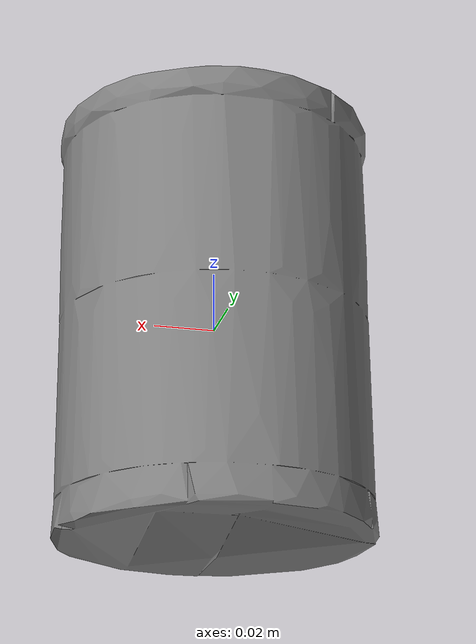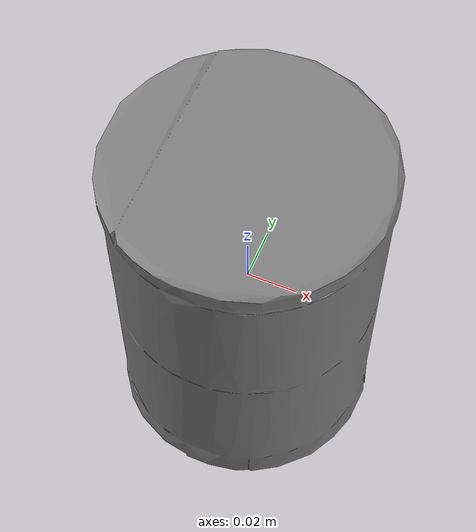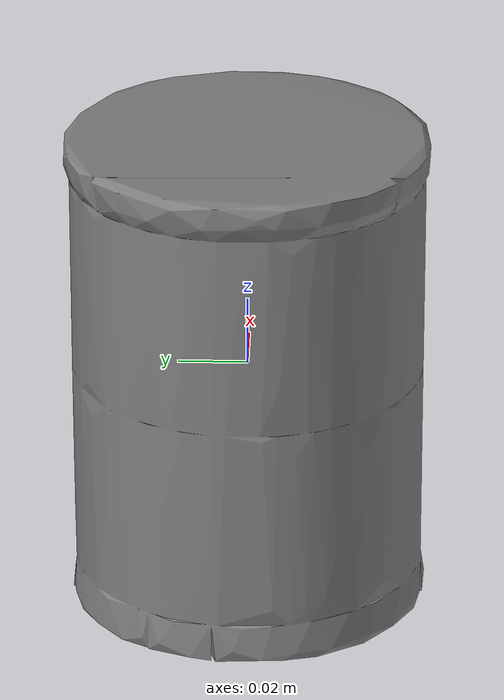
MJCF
<mujoco model="can_Don_Franciscos_Gourmet_Coffee_Medium_Decaf_100_Colombian_12_oz_340_g_M">
  <default>
    <default class="visual">
      <geom group="2" type="mesh" contype="0" conaffinity="0" />
    </default>
    <default class="collision">
      <geom group="3" type="mesh" />
    </default>
  </default>
  <asset>
    <mesh file="can_Don_Franciscos_Gourmet_Coffee_Medium_Decaf_100_Colombian_12_oz_340_g_M.stl" />
    <mesh file="can_Don_Franciscos_Gourmet_Coffee_Medium_Decaf_100_Colombian_12_oz_340_g_M_collision_0.stl" />
    <mesh file="can_Don_Franciscos_Gourmet_Coffee_Medium_Decaf_100_Colombian_12_oz_340_g_M_collision_1.stl" />
    <mesh file="can_Don_Franciscos_Gourmet_Coffee_Medium_Decaf_100_Colombian_12_oz_340_g_M_collision_2.stl" />
    <mesh file="can_Don_Franciscos_Gourmet_Coffee_Medium_Decaf_100_Colombian_12_oz_340_g_M_collision_3.stl" />
    <mesh file="can_Don_Franciscos_Gourmet_Coffee_Medium_Decaf_100_Colombian_12_oz_340_g_M_collision_4.stl" />
    <mesh file="can_Don_Franciscos_Gourmet_Coffee_Medium_Decaf_100_Colombian_12_oz_340_g_M_collision_5.stl" />
    <mesh file="can_Don_Franciscos_Gourmet_Coffee_Medium_Decaf_100_Colombian_12_oz_340_g_M_collision_6.stl" />
    <mesh file="can_Don_Franciscos_Gourmet_Coffee_Medium_Decaf_100_Colombian_12_oz_340_g_M_collision_7.stl" />
    <mesh file="can_Don_Franciscos_Gourmet_Coffee_Medium_Decaf_100_Colombian_12_oz_340_g_M_collision_8.stl" />
    <mesh file="can_Don_Franciscos_Gourmet_Coffee_Medium_Decaf_100_Colombian_12_oz_340_g_M_collision_9.stl" />
    <mesh file="can_Don_Franciscos_Gourmet_Coffee_Medium_Decaf_100_Colombian_12_oz_340_g_M_collision_10.stl" />
    <mesh file="can_Don_Franciscos_Gourmet_Coffee_Medium_Decaf_100_Colombian_12_oz_340_g_M_collision_11.stl" />
    <mesh file="can_Don_Franciscos_Gourmet_Coffee_Medium_Decaf_100_Colombian_12_oz_340_g_M_collision_12.stl" />
    <mesh file="can_Don_Franciscos_Gourmet_Coffee_Medium_Decaf_100_Colombian_12_oz_340_g_M_collision_13.stl" />
    <mesh file="can_Don_Franciscos_Gourmet_Coffee_Medium_Decaf_100_Colombian_12_oz_340_g_M_collision_14.stl" />
    <mesh file="can_Don_Franciscos_Gourmet_Coffee_Medium_Decaf_100_Colombian_12_oz_340_g_M_collision_15.stl" />
  </asset>
  <worldbody>
    <body name="can_Don_Franciscos_Gourmet_Coffee_Medium_Decaf_100_Colombian_12_oz_340_g_M">
      <geom mesh="can_Don_Franciscos_Gourmet_Coffee_Medium_Decaf_100_Colombian_12_oz_340_g_M" class="visual" />
      <geom mesh="can_Don_Franciscos_Gourmet_Coffee_Medium_Decaf_100_Colombian_12_oz_340_g_M_collision_0" class="collision" />
      <geom mesh="can_Don_Franciscos_Gourmet_Coffee_Medium_Decaf_100_Colombian_12_oz_340_g_M_collision_1" class="collision" />
      <geom mesh="can_Don_Franciscos_Gourmet_Coffee_Medium_Decaf_100_Colombian_12_oz_340_g_M_collision_2" class="collision" />
      <geom mesh="can_Don_Franciscos_Gourmet_Coffee_Medium_Decaf_100_Colombian_12_oz_340_g_M_collision_3" class="collision" />
      <geom mesh="can_Don_Franciscos_Gourmet_Coffee_Medium_Decaf_100_Colombian_12_oz_340_g_M_collision_4" class="collision" />
      <geom mesh="can_Don_Franciscos_Gourmet_Coffee_Medium_Decaf_100_Colombian_12_oz_340_g_M_collision_5" class="collision" />
      <geom mesh="can_Don_Franciscos_Gourmet_Coffee_Medium_Decaf_100_Colombian_12_oz_340_g_M_collision_6" class="collision" />
      <geom mesh="can_Don_Franciscos_Gourmet_Coffee_Medium_Decaf_100_Colombian_12_oz_340_g_M_collision_7" class="collision" />
      <geom mesh="can_Don_Franciscos_Gourmet_Coffee_Medium_Decaf_100_Colombian_12_oz_340_g_M_collision_8" class="collision" />
      <geom mesh="can_Don_Franciscos_Gourmet_Coffee_Medium_Decaf_100_Colombian_12_oz_340_g_M_collision_9" class="collision" />
      <geom mesh="can_Don_Franciscos_Gourmet_Coffee_Medium_Decaf_100_Colombian_12_oz_340_g_M_collision_10" class="collision" />
      <geom mesh="can_Don_Franciscos_Gourmet_Coffee_Medium_Decaf_100_Colombian_12_oz_340_g_M_collision_11" class="collision" />
      <geom mesh="can_Don_Franciscos_Gourmet_Coffee_Medium_Decaf_100_Colombian_12_oz_340_g_M_collision_12" class="collision" />
      <geom mesh="can_Don_Franciscos_Gourmet_Coffee_Medium_Decaf_100_Colombian_12_oz_340_g_M_collision_13" class="collision" />
      <geom mesh="can_Don_Franciscos_Gourmet_Coffee_Medium_Decaf_100_Colombian_12_oz_340_g_M_collision_14" class="collision" />
      <geom mesh="can_Don_Franciscos_Gourmet_Coffee_Medium_Decaf_100_Colombian_12_oz_340_g_M_collision_15" class="collision" />
    </body>
  </worldbody>
</mujoco>
